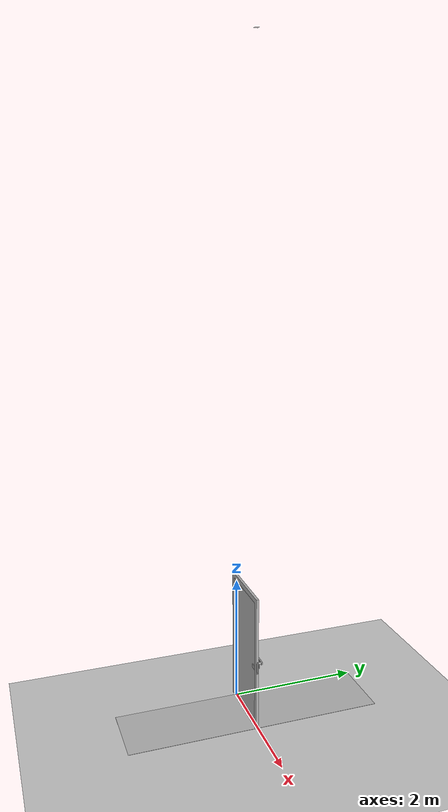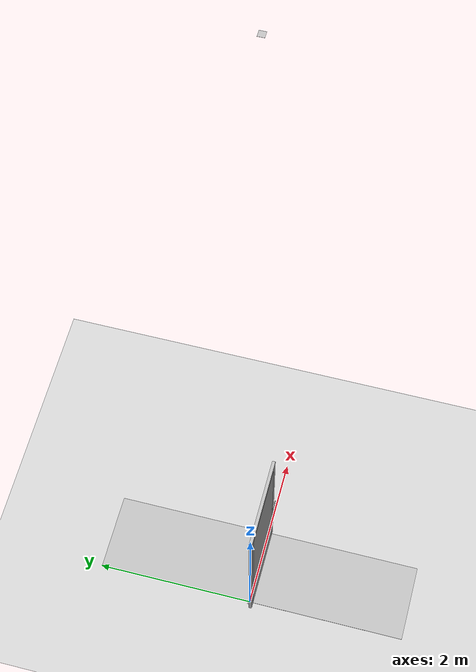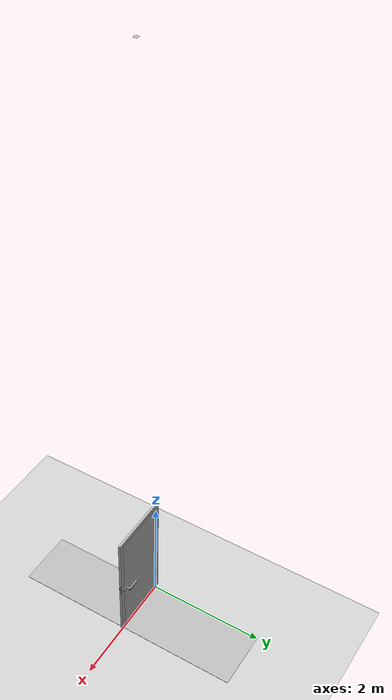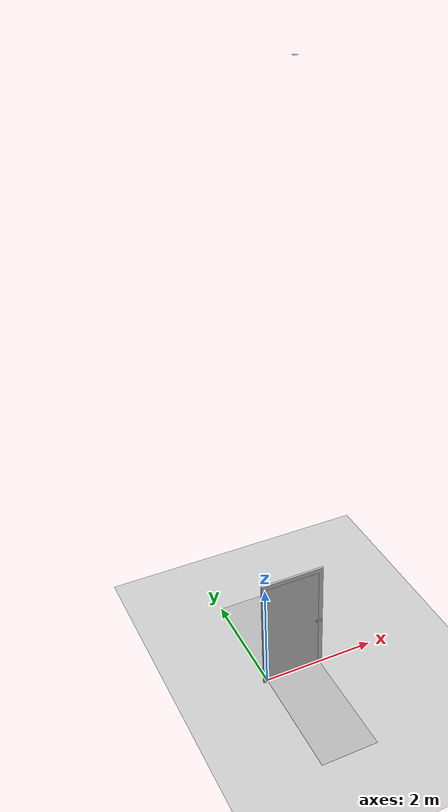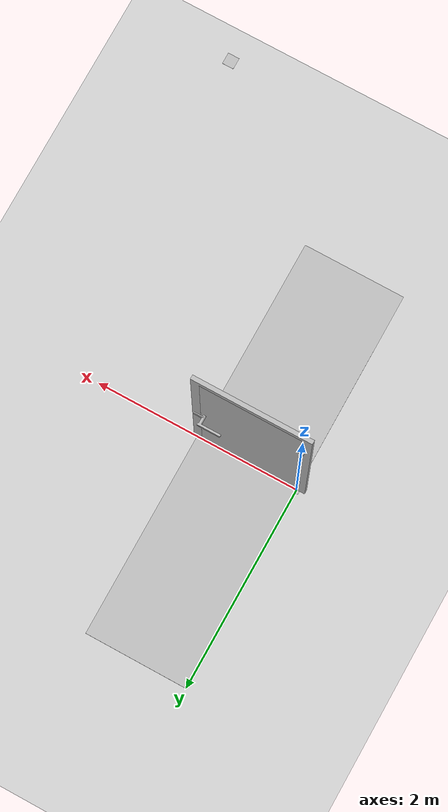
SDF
<sdf version="1.7">
 <world name="my_world">
  <light name="sun" type="directional">
   <pose>0 0 10 0 -0 0</pose>
   <diffuse>0.8 0.8 0.8 1</diffuse>
   <specular>0.2 0.2 0.2 1</specular>
   <attenuation>
    <range>1000</range>
    <constant>0.9</constant>
    <linear>0.01</linear>
    <quadratic>0.001</quadratic>
   </attenuation>
   <direction>-0.5 0.1 -0.9</direction>
   <spot><inner_angle>0</inner_angle><outer_angle>0</outer_angle><falloff>0</falloff></spot>
  </light>
  <model name="ground_plane">
   <static>1</static>
   <link name="link">
    <collision name="collision">
     <geometry><plane><normal>0 0 1</normal><size>100 100</size></plane></geometry>
     <surface><friction><ode><mu>100</mu><mu2>50</mu2></ode></friction></surface>
    </collision>
    <visual name="visual">
     <cast_shadows>0</cast_shadows>
     <geometry><plane><normal>0 0 1</normal><size>100 100</size></plane></geometry>
     <material>
      <script><uri>file://media/materials/scripts/gazebo.material</uri><name>Gazebo/Grey</name></script>
     </material>
    </visual>
   </link>
  </model>
  <gravity>0 0 -9.8</gravity>
  <magnetic_field>6e-06 2.3e-05 -4.2e-05</magnetic_field>
  <atmosphere type="adiabatic"/>
  <physics type="ode">
   <max_step_size>0.001</max_step_size>
   <real_time_factor>1</real_time_factor>
   <real_time_update_rate>1000</real_time_update_rate>
  </physics>
  <scene><ambient>0.4 0.4 0.4 1</ambient><background>0.7 0.7 0.7 1</background><shadows>1</shadows></scene>
  <spherical_coordinates>
   <surface_model>EARTH_WGS84</surface_model>
   <latitude_deg>0</latitude_deg>
   <longitude_deg>0</longitude_deg>
   <elevation>0</elevation>
   <heading_deg>0</heading_deg>
  </spherical_coordinates>
  <model name="door">
   <link name="door_plane">
    <inertial>
     <pose>0.469 -0.020062 1.2633 0 -0 0</pose>
     <mass>16.213</mass>
     <inertia>
      <ixx>7.6894</ixx>
      <ixy>-0.00048417</ixy>
      <ixz>-0.022714</ixz>
      <iyy>11.42</iyy>
      <iyz>-0.00023584</iyz>
      <izz>3.7353</izz>
     </inertia>
    </inertial>
    <collision name="door_plane_collision">
     <pose>0.5 0 0 0 -0 0</pose>
     <geometry><box><size>1 4 0.005</size></box></geometry>
    </collision>
    <collision name="door_plane_fixed_joint_lump__door_cover_link_collision_1">
     <pose>0 0 0.005 0 -0 0</pose>
     <geometry>
      <mesh>
       <scale>1 1 1</scale>
       <uri>/home/matthew/open_door_ws/src/simulation/door/meshes/door_cover_link.STL</uri>
      </mesh>
     </geometry>
    </collision>
    <visual name="door_plane_visual">
     <pose>0.5 0 0 0 -0 0</pose>
     <geometry><box><size>1 4 0.005</size></box></geometry>
    </visual>
    <visual name="door_plane_fixed_joint_lump__door_cover_link_visual_1">
     <pose>0 0 0.005 0 -0 0</pose>
     <geometry>
      <mesh>
       <scale>1 1 1</scale>
       <uri>/home/matthew/open_door_ws/src/simulation/door/meshes/door_cover_link.STL</uri>
      </mesh>
     </geometry>
    </visual>
   </link>
   <joint name="door_shaft_joint" type="revolute">
    <pose relative_to="door_plane">-0.01 0.01 1.805 0 -0 0</pose>
    <parent>door_plane</parent>
    <child>door_link</child>
    <axis>
     <xyz>0 0 1</xyz>
     <limit><lower>0</lower><upper>1.5708</upper><effort>0</effort><velocity>0</velocity></limit>
     <dynamics>
      <damping>1</damping>
      <friction>1</friction>
      <spring_reference>0</spring_reference>
      <spring_stiffness>0</spring_stiffness>
     </dynamics>
    </axis>
   </joint>
   <link name="door_link">
    <pose relative_to="door_shaft_joint">0 0 0 0 -0 0</pose>
    <inertial>
     <pose>0.48213 -0.029974 -0.775 0 -0 0</pose>
     <mass>77.583</mass>
     <inertia>
      <ixx>27.328</ixx>
      <ixy>0.00096194</ixy>
      <ixz>4.1984e-16</ixz>
      <iyy>33.123</iyy>
      <iyz>-5.5362e-17</iyz>
      <izz>5.8156</izz>
     </inertia>
    </inertial>
    <collision name="door_link_collision">
     <geometry>
      <mesh>
       <scale>1 1 1</scale>
       <uri>/home/matthew/open_door_ws/src/simulation/door/meshes/door_link.STL</uri>
      </mesh>
     </geometry>
    </collision>
    <visual name="door_link_visual">
     <geometry>
      <mesh>
       <scale>1 1 1</scale>
       <uri>/home/matthew/open_door_ws/src/simulation/door/meshes/door_link.STL</uri>
      </mesh>
     </geometry>
    </visual>
   </link>
   <joint name="door_hinge_joint" type="revolute">
    <pose relative_to="door_link">0.92 -0.01 -0.775 0 -0 0</pose>
    <parent>door_link</parent>
    <child>door_hinge_link</child>
    <axis>
     <xyz>0 -1 0</xyz>
     <limit><lower>0</lower><upper>1.5708</upper><effort>0</effort><velocity>0</velocity></limit>
     <dynamics>
      <damping>1</damping>
      <friction>1</friction>
      <spring_reference>0</spring_reference>
      <spring_stiffness>0</spring_stiffness>
     </dynamics>
    </axis>
   </joint>
   <link name="door_hinge_link">
    <pose relative_to="door_hinge_joint">0 0 0 0 -0 0</pose>
    <inertial>
     <pose>-0.068706 0.07843 -0 0 -0 0</pose>
     <mass>0.23055</mass>
     <inertia>
      <ixx>0.0001603</ixx>
      <ixy>0.00018327</ixy>
      <ixz>-2.2485e-20</ixz>
      <iyy>0.001077</iyy>
      <iyz>6.6033e-21</iyz>
      <izz>0.001184</izz>
     </inertia>
    </inertial>
    <collision name="door_hinge_link_fixed_joint_lump__hinge_handle_box_collision">
     <pose>-0.09 0.09 0 3.14159 1.57079 3.14159</pose>
     <geometry><box><size>0.03 0.02 0.2</size></box></geometry>
    </collision>
    <collision name="door_hinge_link_fixed_joint_lump__hinge_lock_collision_1">
     <pose>0.05 -0.06 0 3.14159 1.57079 3.14159</pose>
     <geometry><box><size>0.05 0.01 0.1</size></box></geometry>
    </collision>
    <collision name="door_hinge_link_fixed_joint_lump__hinge_lock_front_collision_2">
     <pose>0.05 0.02 0 3.14159 1.57079 3.14159</pose>
     <geometry><box><size>0.05 0.01 0.1</size></box></geometry>
    </collision>
    <visual name="door_hinge_link_visual">
     <geometry>
      <mesh>
       <scale>1 1 1</scale>
       <uri>/home/matthew/open_door_ws/src/simulation/door/meshes/door_hinge_link.STL</uri>
      </mesh>
     </geometry>
    </visual>
    <visual name="door_hinge_link_fixed_joint_lump__hinge_handle_box_visual_1">
     <pose>-0.09 0.09 0 3.14159 1.57079 3.14159</pose>
     <geometry><box><size>0.03 0.02 0.2</size></box></geometry>
    </visual>
    <visual name="door_hinge_link_fixed_joint_lump__hinge_lock_visual_2">
     <pose>0.05 -0.06 0 3.14159 1.57079 3.14159</pose>
     <geometry><box><size>0.05 0.01 0.1</size></box></geometry>
    </visual>
    <visual name="door_hinge_link_fixed_joint_lump__hinge_lock_front_visual_3">
     <pose>0.05 0.02 0 3.14159 1.57079 3.14159</pose>
     <geometry><box><size>0.05 0.01 0.1</size></box></geometry>
    </visual>
   </link>
   <link name="apriltag_0::link">
    <pose>0.6 0.1 10. 0 0 0</pose>
    <inertial>
     <mass>1e-05</mass>
     <inertia><ixx>0.00058</ixx><ixy>0</ixy><ixz>0</ixz><iyy>0.00058</iyy><iyz>0</iyz><izz>0.00019</izz></inertia>
    </inertial>
    <collision name="collision"><geometry><box><size>0.06 0.06 0.001</size></box></geometry></collision>
    <visual name="visual">
     <geometry><box><size>0.06 0.06 0.001</size></box></geometry>
     <material>
      <script>
       <uri>model://apriltag_0/materials/scripts</uri>
       <uri>model://apriltag_0/materials/textures</uri>
       <name>Apriltag_0/Diffuse</name>
      </script>
     </material>
    </visual>
   </link>
   <joint name="apriltag_0" type="fixed"><child>apriltag_0::link</child><parent>door_plane</parent></joint>
  </model>
  <model name="apriltag_0">
   <link name="link">
    <inertial>
     <mass>0.00001</mass>
     <inertia><ixx>0.00058</ixx><ixy>0</ixy><ixz>0</ixz><iyy>0.00058</iyy><iyz>0</iyz><izz>0.00019</izz></inertia>
    </inertial>
    <collision name="collision"><geometry><box><size>.06 .06 .001</size></box></geometry></collision>
    <visual name="visual">
     <geometry><box><size>.06 .06 .001</size></box></geometry>
     <material>
      <script>
       <uri>model://apriltag_0/materials/scripts</uri>
       <uri>model://apriltag_0/materials/textures</uri>
       <name>Apriltag_0/Diffuse</name>
      </script>
     </material>
    </visual>
   </link>
  </model>
 </world>
</sdf>
